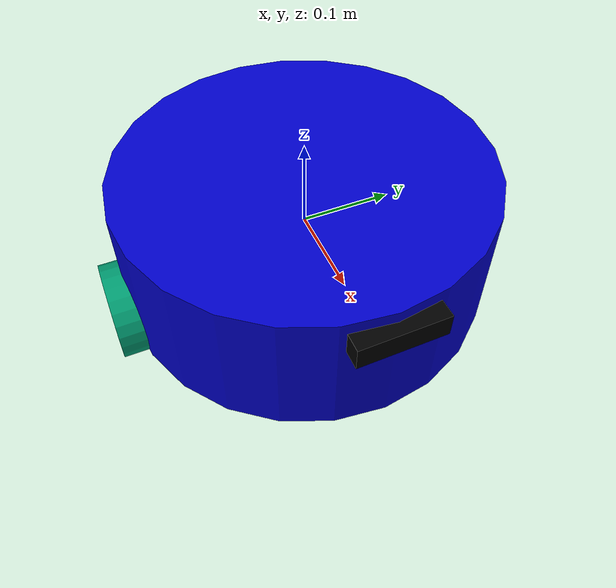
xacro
<?xml version="1.0"?>
<robot name="cobot" xmlns:xacro="http://www.ros.org/wiki/xacro">

  <!-- ═══ BASE BODY ═══ -->
  <link name="base_link">
    <visual>
      <geometry><cylinder radius="0.2" length="0.15"/></geometry>
      <material name="blue"><color rgba="0.0 0.0 0.8 1.0"/></material>
    </visual>
    <collision>
      <geometry><cylinder radius="0.2" length="0.15"/></geometry>
    </collision>
    <inertial>
      <mass value="5"/>
      <inertia ixx="0.1" iyy="0.1" izz="0.1" ixy="0" ixz="0" iyz="0"/>
    </inertial>
  </link>

  <!-- ═══ LEFT WHEEL ═══ -->
  <link name="left_wheel">
    <visual><geometry><cylinder radius="0.05" length="0.04"/></geometry></visual>
    <collision><geometry><cylinder radius="0.05" length="0.04"/></geometry></collision>
    <inertial>
      <mass value="0.5"/>
      <inertia ixx="0.001" iyy="0.001" izz="0.001" ixy="0" ixz="0" iyz="0"/>
    </inertial>
  </link>
  <joint name="left_wheel_joint" type="continuous">
    <parent link="base_link"/>
    <child link="left_wheel"/>
    <origin xyz="0 0.2 -0.05" rpy="-1.5707 0 0"/>
    <axis xyz="0 0 1"/>
  </joint>

  <!-- ═══ RIGHT WHEEL ═══ -->
  <link name="right_wheel">
    <visual><geometry><cylinder radius="0.05" length="0.04"/></geometry></visual>
    <collision><geometry><cylinder radius="0.05" length="0.04"/></geometry></collision>
    <inertial>
      <mass value="0.5"/>
      <inertia ixx="0.001" iyy="0.001" izz="0.001" ixy="0" ixz="0" iyz="0"/>
    </inertial>
  </link>
  <joint name="right_wheel_joint" type="continuous">
    <parent link="base_link"/>
    <child link="right_wheel"/>
    <origin xyz="0 -0.2 -0.05" rpy="-1.5707 0 0"/>
    <axis xyz="0 0 1"/>
  </joint>

  <!-- ═══ REALSENSE D435i CAMERA LINK ═══ -->
  <link name="camera_link">
    <visual>
      <geometry><box size="0.025 0.090 0.025"/></geometry>
      <material name="black"><color rgba="0.0 0.0 0.0 1.0"/></material>
    </visual>
    <collision><geometry><box size="0.025 0.090 0.025"/></geometry></collision>
    <inertial>
      <mass value="0.072"/>
      <inertia ixx="0.001" iyy="0.001" izz="0.001" ixy="0" ixz="0" iyz="0"/>
    </inertial>
  </link>
  <joint name="camera_joint" type="fixed">
    <parent link="base_link"/>
    <child link="camera_link"/>
    <origin xyz="0.2 0 0.05" rpy="0 0 0"/>
  </joint>

  <!-- Camera optical frame -->
  <link name="camera_depth_frame"/>
  <joint name="camera_depth_joint" type="fixed">
    <parent link="camera_link"/>
    <child link="camera_depth_frame"/>
    <origin xyz="0 0 0" rpy="-1.5707 0 -1.5707"/>
  </joint>

  <!-- ═══ MPU6050 IMU LINK ═══ -->
  <link name="imu_link">
    <visual>
      <geometry><box size="0.02 0.02 0.005"/></geometry>
      <material name="green"><color rgba="0.0 0.8 0.0 1.0"/></material>
    </visual>
    <inertial>
      <mass value="0.01"/>
      <inertia ixx="0.0001" iyy="0.0001" izz="0.0001" ixy="0" ixz="0" iyz="0"/>
    </inertial>
  </link>
  <joint name="imu_joint" type="fixed">
    <parent link="base_link"/>
    <child link="imu_link"/>
    <origin xyz="0 0 0.05" rpy="0 0 0"/>
  </joint>

  <!-- ═══ DIFF DRIVE PLUGIN ═══ -->
  <gazebo>
    <plugin name="diff_drive" filename="libgazebo_ros_diff_drive.so">
      <left_joint>left_wheel_joint</left_joint>
      <right_joint>right_wheel_joint</right_joint>
      <wheel_separation>0.4</wheel_separation>
      <wheel_diameter>0.1</wheel_diameter>
      <publish_odom>true</publish_odom>
      <publish_odom_tf>true</publish_odom_tf>
      <ros><remapping>cmd_vel:=/cmd_vel</remapping></ros>
    </plugin>
  </gazebo>

  <!-- ═══ LIDAR SENSOR ═══ -->
  <gazebo reference="base_link">
    <sensor name="laser" type="ray">
      <pose>0 0 0.1 0 0 0</pose>
      <always_on>true</always_on>
      <update_rate>10</update_rate>
      <ray>
        <scan>
          <horizontal>
            <samples>360</samples>
            <min_angle>-3.14159</min_angle>
            <max_angle>3.14159</max_angle>
          </horizontal>
        </scan>
        <range><min>0.1</min><max>10.0</max></range>
      </ray>
      <plugin name="laser" filename="libgazebo_ros_ray_sensor.so">
        <ros><remapping>~/out:=scan</remapping></ros>
        <output_type>sensor_msgs/LaserScan</output_type>
      </plugin>
    </sensor>
  </gazebo>

  <!-- ═══ REALSENSE D435i DEPTH CAMERA PLUGIN ═══ -->
  <gazebo reference="camera_link">
    <sensor name="depth_camera" type="depth">
      <update_rate>30</update_rate>
      <always_on>true</always_on>
      <camera>
        <horizontal_fov>1.5184</horizontal_fov>
        <image>
          <width>640</width>
          <height>480</height>
          <format>R8G8B8</format>
        </image>
        <clip><near>0.1</near><far>10.0</far></clip>
      </camera>
      <plugin name="depth_camera" filename="libgazebo_ros_camera.so">
        <ros>
          <remapping>~/image_raw:=/camera/color/image_raw</remapping>
          <remapping>~/depth/image_raw:=/camera/depth/image_rect_raw</remapping>
          <remapping>~/points:=/camera/depth/color/points</remapping>
          <remapping>~/camera_info:=/camera/color/camera_info</remapping>
        </ros>
        <camera_name>camera</camera_name>
        <frame_name>camera_depth_frame</frame_name>
        <min_depth>0.1</min_depth>
        <max_depth>10.0</max_depth>
      </plugin>
    </sensor>
  </gazebo>

  <!-- ═══ MPU6050 IMU PLUGIN ═══ -->
  <gazebo reference="imu_link">
    <sensor name="imu_sensor" type="imu">
      <always_on>true</always_on>
      <update_rate>100</update_rate>
      <plugin name="imu_plugin" filename="libgazebo_ros_imu_sensor.so">
        <ros><remapping>~/out:=/imu/data</remapping></ros>
        <initial_orientation_as_reference>false</initial_orientation_as_reference>
      </plugin>
    </sensor>
  </gazebo>

</robot>
